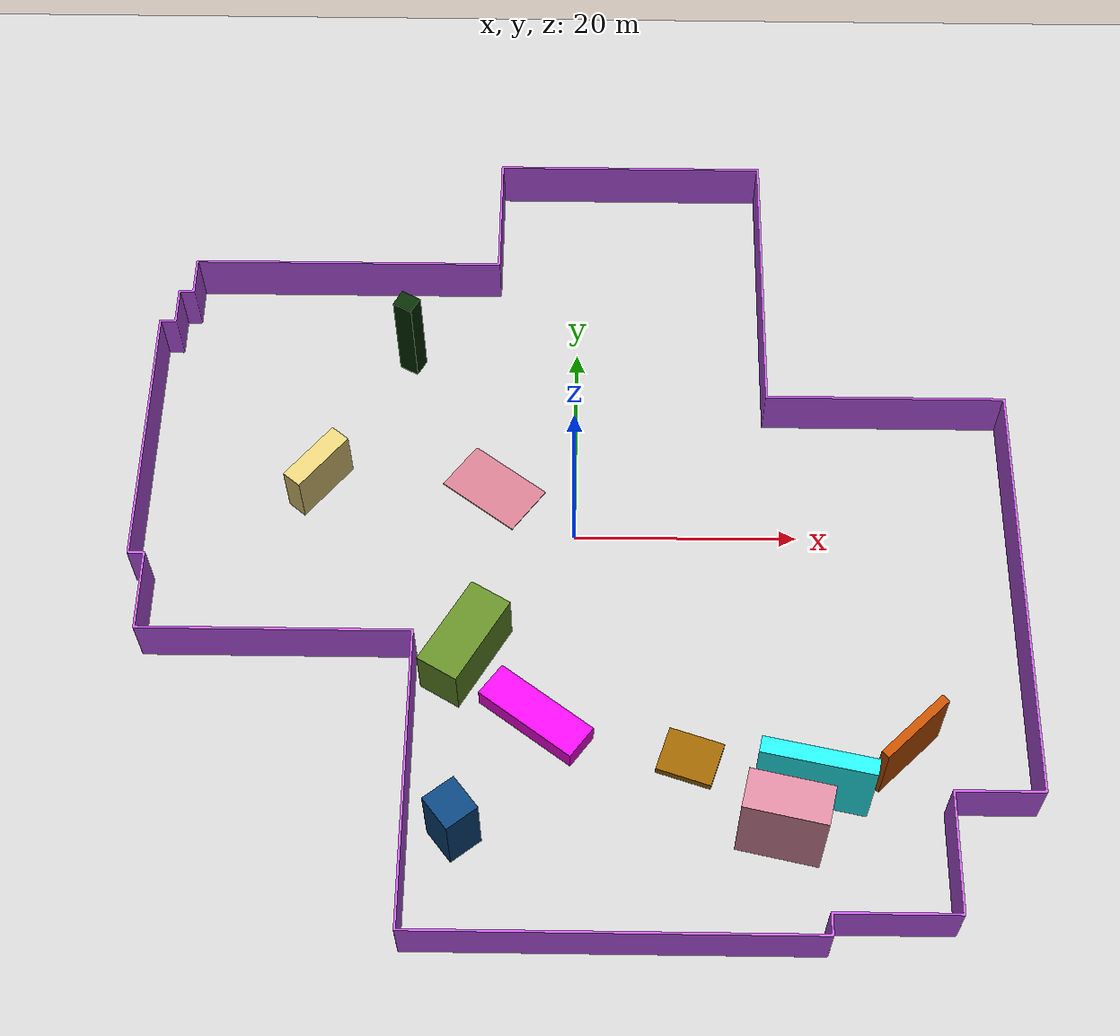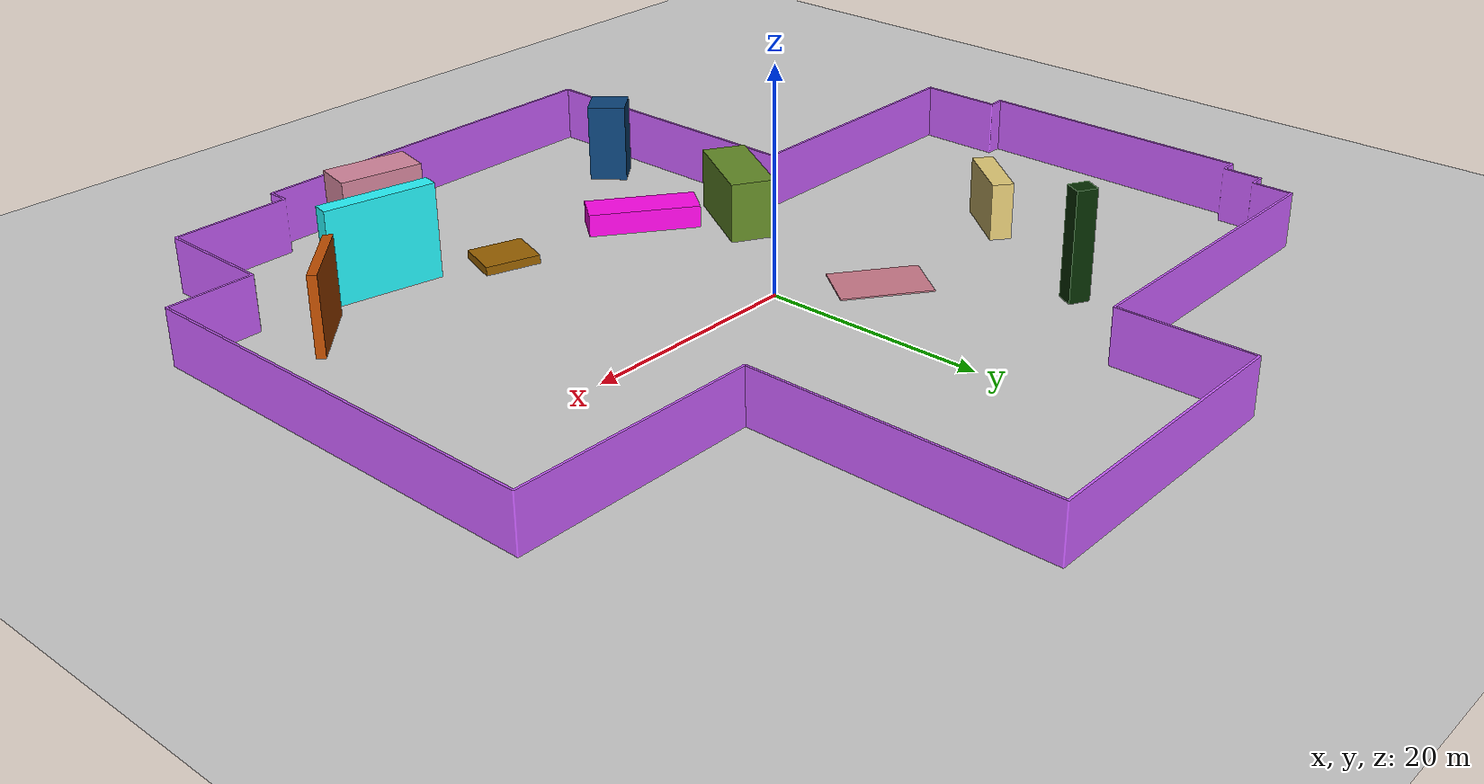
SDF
<?xml version="1.0" ?>
<sdf version="1.6">
  <world name="default">
    <atmosphere type="adiabatic"/>
    <wind>
      <linear_velocity>0 0 0</linear_velocity>
    </wind>
    <physics name="default_physics" default="1" type="ode">
      <max_step_size>0.001</max_step_size>
      <real_time_factor>1.0</real_time_factor>
      <real_time_update_rate>1000.0</real_time_update_rate>
      <max_contacts>20</max_contacts>
      <ode>
        <solver>
          <min_step_size>0.0001</min_step_size>
          <iters>50</iters>
          <sor>1.3</sor>
          <type>quick</type>
          <precon_iters>0</precon_iters>
          <use_dynamic_moi_rescaling>0</use_dynamic_moi_rescaling>
          <friction_model>pyramid_model</friction_model>
        </solver>
        <constraints>
          <cfm>0.0</cfm>
          <erp>0.2</erp>
          <contact_surface_layer>0.001</contact_surface_layer>
          <contact_max_correcting_vel>100.0</contact_max_correcting_vel>
        </constraints>
      </ode>
    </physics>
    <gravity>0 0 -9.8</gravity>
    <model name="box">
      <pose frame="">-23.3687 5.10153 2.60114 0 -0 2.46235</pose>
      <static>1</static>
      <self_collide>0</self_collide>
      <allow_auto_disable>0</allow_auto_disable>
      <link name="link">
        <kinematic>0</kinematic>
        <gravity>1</gravity>
        <self_collide>0</self_collide>
        <collision name="collision">
          <geometry>
            <box>
              <size>1.92319 6.44637 5.20228</size>
            </box>
          </geometry>
          <pose frame="">0 0 0 0 -0 0</pose>
          <max_contacts>20</max_contacts>
        </collision>
        <visual name="visual">
          <geometry>
            <box>
              <size>1.92319 6.44637 5.20228</size>
            </box>
          </geometry>
          <material>
            <ambient>0.886275 0.792157 0.462745 1</ambient>
            <diffuse>0.8862745098039215 0.792156862745098 0.4627450980392157 1</diffuse>
          </material>
          <pose frame="">0 0 0 0 -0 0</pose>
          <cast_shadows>1</cast_shadows>
          <transparency>0.0</transparency>
        </visual>
        <pose frame="">0 0 0 0 -0 0</pose>
      </link>
    </model>
    <model name="box_1">
      <pose frame="">-15.612 18.8824 4.99653 0 0 -2.06729</pose>
      <static>1</static>
      <self_collide>0</self_collide>
      <allow_auto_disable>0</allow_auto_disable>
      <link name="link">
        <kinematic>0</kinematic>
        <gravity>1</gravity>
        <self_collide>0</self_collide>
        <collision name="collision">
          <geometry>
            <box>
              <size>1.6476 1.90574 9.99306</size>
            </box>
          </geometry>
          <pose frame="">0 0 0 0 -0 0</pose>
          <max_contacts>20</max_contacts>
        </collision>
        <visual name="visual">
          <geometry>
            <box>
              <size>1.6476 1.90574 9.99306</size>
            </box>
          </geometry>
          <material>
            <ambient>0.0235294 0.180392 0.0117647 1</ambient>
            <diffuse>0.023529411764705882 0.1803921568627451 0.011764705882352941 1</diffuse>
          </material>
          <pose frame="">0 0 0 0 -0 0</pose>
          <cast_shadows>1</cast_shadows>
          <transparency>0.0</transparency>
        </visual>
        <pose frame="">0 0 0 0 -0 0</pose>
      </link>
    </model>
    <model name="box_2">
      <pose frame="">28.4403 -21.7787 3.54668 0 -0 2.34033</pose>
      <static>1</static>
      <self_collide>0</self_collide>
      <allow_auto_disable>0</allow_auto_disable>
      <link name="link">
        <kinematic>0</kinematic>
        <gravity>1</gravity>
        <self_collide>0</self_collide>
        <collision name="collision">
          <geometry>
            <box>
              <size>0.808946 7.49635 7.09336</size>
            </box>
          </geometry>
          <pose frame="">0 0 0 0 -0 0</pose>
          <max_contacts>20</max_contacts>
        </collision>
        <visual name="visual">
          <geometry>
            <box>
              <size>0.808946 7.49635 7.09336</size>
            </box>
          </geometry>
          <material>
            <ambient>0.752941 0.305882 0.00392157 1</ambient>
            <diffuse>0.7529411764705882 0.3058823529411765 0.00392156862745098 1</diffuse>
          </material>
          <pose frame="">0 0 0 0 -0 0</pose>
          <cast_shadows>1</cast_shadows>
          <transparency>0.0</transparency>
        </visual>
        <pose frame="">0 0 0 0 -0 0</pose>
      </link>
    </model>
    <model name="box_3">
      <pose frame="">-3.09356 -18.3528 1.02039 0 -0 2.5038</pose>
      <static>1</static>
      <self_collide>0</self_collide>
      <allow_auto_disable>0</allow_auto_disable>
      <link name="link">
        <kinematic>0</kinematic>
        <gravity>1</gravity>
        <self_collide>0</self_collide>
        <collision name="collision">
          <geometry>
            <box>
              <size>9.92096 3.29767 2.04078</size>
            </box>
          </geometry>
          <pose frame="">0 0 0 0 -0 0</pose>
          <max_contacts>20</max_contacts>
        </collision>
        <visual name="visual">
          <geometry>
            <box>
              <size>9.92096 3.29767 2.04078</size>
            </box>
          </geometry>
          <material>
            <ambient>1 0.0313725 0.909804 1</ambient>
            <diffuse>1.0 0.03137254901960784 0.9098039215686274 1</diffuse>
          </material>
          <pose frame="">0 0 0 0 -0 0</pose>
          <cast_shadows>1</cast_shadows>
          <transparency>0.0</transparency>
        </visual>
        <pose frame="">0 0 0 0 -0 0</pose>
      </link>
    </model>
    <model name="box_4">
      <pose frame="">17.5629 -29.0205 4.5365 0 -0 2.92704</pose>
      <static>1</static>
      <self_collide>0</self_collide>
      <allow_auto_disable>0</allow_auto_disable>
      <link name="link">
        <kinematic>0</kinematic>
        <gravity>1</gravity>
        <self_collide>0</self_collide>
        <collision name="collision">
          <geometry>
            <box>
              <size>7.16179 3.48906 9.07301</size>
            </box>
          </geometry>
          <pose frame="">0 0 0 0 -0 0</pose>
          <max_contacts>20</max_contacts>
        </collision>
        <visual name="visual">
          <geometry>
            <box>
              <size>7.16179 3.48906 9.07301</size>
            </box>
          </geometry>
          <material>
            <ambient>0.835294 0.52549 0.615686 1</ambient>
            <diffuse>0.8352941176470589 0.5254901960784314 0.615686274509804 1</diffuse>
          </material>
          <pose frame="">0 0 0 0 -0 0</pose>
          <cast_shadows>1</cast_shadows>
          <transparency>0.0</transparency>
        </visual>
        <pose frame="">0 0 0 0 -0 0</pose>
      </link>
    </model>
    <model name="box_5">
      <pose frame="">-7.46188 5.07797 0.0627586 0 0 -2.20896</pose>
      <static>1</static>
      <self_collide>0</self_collide>
      <allow_auto_disable>0</allow_auto_disable>
      <link name="link">
        <kinematic>0</kinematic>
        <gravity>1</gravity>
        <self_collide>0</self_collide>
        <collision name="collision">
          <geometry>
            <box>
              <size>4.95992 8.06757 0.125517</size>
            </box>
          </geometry>
          <pose frame="">0 0 0 0 -0 0</pose>
          <max_contacts>20</max_contacts>
        </collision>
        <visual name="visual">
          <geometry>
            <box>
              <size>4.95992 8.06757 0.125517</size>
            </box>
          </geometry>
          <material>
            <ambient>0.8 0.478431 0.545098 1</ambient>
            <diffuse>0.8 0.47843137254901963 0.5450980392156862 1</diffuse>
          </material>
          <pose frame="">0 0 0 0 -0 0</pose>
          <cast_shadows>1</cast_shadows>
          <transparency>0.0</transparency>
        </visual>
        <pose frame="">0 0 0 0 -0 0</pose>
      </link>
    </model>
    <model name="box_6">
      <pose frame="">-9.70827 -29.1355 3.58547 0 -0 2.2337</pose>
      <static>1</static>
      <self_collide>0</self_collide>
      <allow_auto_disable>0</allow_auto_disable>
      <link name="link">
        <kinematic>0</kinematic>
        <gravity>1</gravity>
        <self_collide>0</self_collide>
        <collision name="collision">
          <geometry>
            <box>
              <size>3.4205 3.17686 7.17094</size>
            </box>
          </geometry>
          <pose frame="">0 0 0 0 -0 0</pose>
          <max_contacts>20</max_contacts>
        </collision>
        <visual name="visual">
          <geometry>
            <box>
              <size>3.4205 3.17686 7.17094</size>
            </box>
          </geometry>
          <material>
            <ambient>0.0392157 0.262745 0.478431 1</ambient>
            <diffuse>0.0392156862745098 0.2627450980392157 0.47843137254901963 1</diffuse>
          </material>
          <pose frame="">0 0 0 0 -0 0</pose>
          <cast_shadows>1</cast_shadows>
          <transparency>0.0</transparency>
        </visual>
        <pose frame="">0 0 0 0 -0 0</pose>
      </link>
    </model>
    <model name="box_7">
      <pose frame="">10.1249 -21.9182 0.392282 0 -0 1.25482</pose>
      <static>1</static>
      <self_collide>0</self_collide>
      <allow_auto_disable>0</allow_auto_disable>
      <link name="link">
        <kinematic>0</kinematic>
        <gravity>1</gravity>
        <self_collide>0</self_collide>
        <collision name="collision">
          <geometry>
            <box>
              <size>4.04526 4.93298 0.784564</size>
            </box>
          </geometry>
          <pose frame="">0 0 0 0 -0 0</pose>
          <max_contacts>20</max_contacts>
        </collision>
        <visual name="visual">
          <geometry>
            <box>
              <size>4.04526 4.93298 0.784564</size>
            </box>
          </geometry>
          <material>
            <ambient>0.603922 0.384314 0 1</ambient>
            <diffuse>0.6039215686274509 0.3843137254901961 0.0 1</diffuse>
          </material>
          <pose frame="">0 0 0 0 -0 0</pose>
          <cast_shadows>1</cast_shadows>
          <transparency>0.0</transparency>
        </visual>
        <pose frame="">0 0 0 0 -0 0</pose>
      </link>
    </model>
    <model name="box_8">
      <pose frame="">-9.32964 -12.4642 2.71507 0 0 -0.533026</pose>
      <static>1</static>
      <self_collide>0</self_collide>
      <allow_auto_disable>0</allow_auto_disable>
      <link name="link">
        <kinematic>0</kinematic>
        <gravity>1</gravity>
        <self_collide>0</self_collide>
        <collision name="collision">
          <geometry>
            <box>
              <size>3.97203 8.67228 5.43015</size>
            </box>
          </geometry>
          <pose frame="">0 0 0 0 -0 0</pose>
          <max_contacts>20</max_contacts>
        </collision>
        <visual name="visual">
          <geometry>
            <box>
              <size>3.97203 8.67228 5.43015</size>
            </box>
          </geometry>
          <material>
            <ambient>0.388235 0.545098 0.152941 1</ambient>
            <diffuse>0.38823529411764707 0.5450980392156862 0.15294117647058825 1</diffuse>
          </material>
          <pose frame="">0 0 0 0 -0 0</pose>
          <cast_shadows>1</cast_shadows>
          <transparency>0.0</transparency>
        </visual>
        <pose frame="">0 0 0 0 -0 0</pose>
      </link>
    </model>
    <model name="box_9">
      <pose frame="">20.2487 -25.1883 4.27384 0 -0 1.3675</pose>
      <static>1</static>
      <self_collide>0</self_collide>
      <allow_auto_disable>0</allow_auto_disable>
      <link name="link">
        <kinematic>0</kinematic>
        <gravity>1</gravity>
        <self_collide>0</self_collide>
        <collision name="collision">
          <geometry>
            <box>
              <size>1.47604 9.81684 8.54767</size>
            </box>
          </geometry>
          <pose frame="">0 0 0 0 -0 0</pose>
          <max_contacts>20</max_contacts>
        </collision>
        <visual name="visual">
          <geometry>
            <box>
              <size>1.47604 9.81684 8.54767</size>
            </box>
          </geometry>
          <material>
            <ambient>0.14902 0.968627 0.992157 1</ambient>
            <diffuse>0.14901960784313725 0.9686274509803922 0.9921568627450981 1</diffuse>
          </material>
          <pose frame="">0 0 0 0 -0 0</pose>
          <cast_shadows>1</cast_shadows>
          <transparency>0.0</transparency>
        </visual>
        <pose frame="">0 0 0 0 -0 0</pose>
      </link>
    </model>
    <include>
      <uri>model://test_4_walls</uri>
      <pose frame="">0 0 2.5 0 -0 0</pose>
      <name>test_4_walls</name>
      <static>1</static>
    </include>
    <include>
      <uri>model://ground_plane</uri>
      <pose frame="">0 0 0 0 -0 0</pose>
      <name>ground_plane</name>
      <static>1</static>
    </include>
    <include>
      <uri>model://ground_plane</uri>
    </include>
    <include>
      <uri>model://sun</uri>
    </include>
  </world>
</sdf>

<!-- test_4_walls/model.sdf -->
<sdf version="1.6">
  <model name="test_4_walls">
    <pose frame="">0 0 2.5 0 -0 0</pose>
    <static>1</static>
    <self_collide>0</self_collide>
    <allow_auto_disable>0</allow_auto_disable>
    <link name="mesh">
      <kinematic>0</kinematic>
      <gravity>1</gravity>
      <self_collide>0</self_collide>
      <collision name="collision">
        <geometry>
          <mesh>
            <uri>file:///home/agusmazzeo/Documents/UTN/Proyecto/Frontier-Exploration-with-a-prior/Notebooks/files/models/test_4_walls/meshes/xFHXbbfkVZ.stl</uri>
            <scale>1 1 1</scale>
          </mesh>
        </geometry>
        <pose frame="">-4.43285 -4.67384 -2.5 0 -0 0</pose>
        <max_contacts>20</max_contacts>
      </collision>
      <visual name="visual">
        <geometry>
          <mesh>
            <uri>file:///home/agusmazzeo/Documents/UTN/Proyecto/Frontier-Exploration-with-a-prior/Notebooks/files/models/test_4_walls/meshes/SndQtJqQZA.stl</uri>
            <scale>1 1 1</scale>
          </mesh>
        </geometry>
        <material>
          <ambient>0.788235 0.368627 0.984314 1</ambient>
          <diffuse>0.788235294117647 0.3686274509803922 0.984313725490196 1</diffuse>
        </material>
        <pose frame="">-4.43285 -4.67384 -2.5 0 -0 0</pose>
        <cast_shadows>1</cast_shadows>
        <transparency>0.0</transparency>
      </visual>
      <pose frame="">0 0 0 0 -0 0</pose>
    </link>
  </model>
</sdf>
